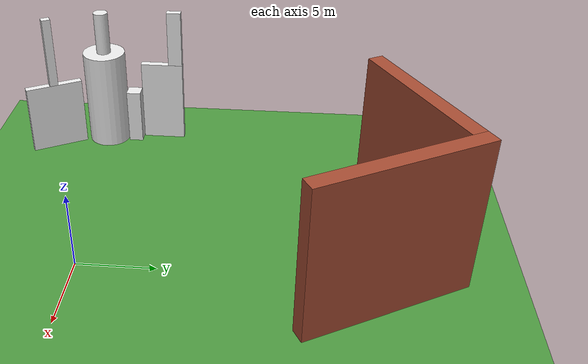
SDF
<sdf version="1.5">
 <world name="default">
  <scene><sky><time>16</time></sky></scene>
  <include><uri>model://sun</uri></include>
  <include><uri>model://ground_plane</uri></include>
  <include><uri>model://grass_plane</uri></include>
  <physics name="default_physics" default="0" type="ode">
   <gravity>0 0 -9.8066</gravity>
   <ode>
    <solver>
     <type>quick</type>
     <iters>10</iters>
     <sor>1.3</sor>
     <use_dynamic_moi_rescaling>0</use_dynamic_moi_rescaling>
    </solver>
    <constraints>
     <cfm>0</cfm>
     <erp>0.2</erp>
     <contact_max_correcting_vel>100</contact_max_correcting_vel>
     <contact_surface_layer>0.001</contact_surface_layer>
    </constraints>
   </ode>
   <max_step_size>0.004</max_step_size>
   <real_time_factor>1</real_time_factor>
   <real_time_update_rate>250</real_time_update_rate>
   <magnetic_field>6.0e-6 2.3e-5 -4.2e-5</magnetic_field>
  </physics>
  <include><name>wall</name><uri>model://wall</uri><pose>-5 20 0  0 0 0.5</pose><static>true</static></include>
  <model name="cylinder_1">
   <pose>-15 -1 3.5 0 0 0</pose>
   <static>true</static>
   <link name="link">
    <collision name="collision">
     <geometry><cylinder><radius>1.5</radius><length>7</length></cylinder></geometry>
    </collision>
    <visual name="visual">
     <geometry><cylinder><radius>1.5</radius><length>7</length></cylinder></geometry>
     <material>
      <script><name>Gazebo/White</name><uri>file://media/materials/scripts/gazebo.material</uri></script>
     </material>
    </visual>
   </link>
  </model>
  <model name="cylinder_2">
   <pose>-15 -1 8.5 0 0 0</pose>
   <static>true</static>
   <link name="link">
    <collision name="collision">
     <geometry><cylinder><radius>0.5</radius><length>3</length></cylinder></geometry>
    </collision>
    <visual name="visual">
     <geometry><cylinder><radius>0.5</radius><length>3</length></cylinder></geometry>
     <material>
      <script><name>Gazebo/White</name><uri>file://media/materials/scripts/gazebo.material</uri></script>
     </material>
    </visual>
   </link>
  </model>
  <model name="box_1">
   <pose>-15 1.05 2 0 0 0</pose>
   <static>true</static>
   <link name="link">
    <collision name="collision"><geometry><box><size>1 1 4</size></box></geometry></collision>
    <visual name="visual">
     <geometry><box><size>1 1 4</size></box></geometry>
     <material>
      <script><name>Gazebo/White</name><uri>file://media/materials/scripts/gazebo.material</uri></script>
     </material>
    </visual>
   </link>
  </model>
  <model name="box_2">
   <pose>-15.5 3.1 3 0 0 0</pose>
   <static>true</static>
   <link name="link">
    <collision name="collision"><geometry><box><size>0.5 3 6</size></box></geometry></collision>
    <visual name="visual">
     <geometry><box><size>0.5 3 6</size></box></geometry>
     <material>
      <script><name>Gazebo/White</name><uri>file://media/materials/scripts/gazebo.material</uri></script>
     </material>
    </visual>
   </link>
  </model>
  <model name="box_2_top">
   <pose>-15.5 4.1 8 0 0 0</pose>
   <static>true</static>
   <link name="link">
    <collision name="collision"><geometry><box><size>0.49 1 4</size></box></geometry></collision>
    <visual name="visual">
     <geometry><box><size>0.49 1 4</size></box></geometry>
     <material>
      <script><name>Gazebo/White</name><uri>file://media/materials/scripts/gazebo.material</uri></script>
     </material>
    </visual>
   </link>
  </model>
  <model name="box_3">
   <pose>-13.5 -4.5 2.5  0 0 0.5</pose>
   <static>true</static>
   <link name="link">
    <collision name="collision"><geometry><box><size>0.5 4 5</size></box></geometry></collision>
    <visual name="visual">
     <geometry><box><size>0.5 4 5</size></box></geometry>
     <material>
      <script><name>Gazebo/White</name><uri>file://media/materials/scripts/gazebo.material</uri></script>
     </material>
    </visual>
   </link>
  </model>
  <model name="box_3_top">
   <pose>-13.5 -4.5 7.5  0 0 0.5</pose>
   <static>true</static>
   <link name="link">
    <collision name="collision"><geometry><box><size>0.49 0.6 5</size></box></geometry></collision>
    <visual name="visual">
     <geometry><box><size>0.49 0.6 5</size></box></geometry>
     <material>
      <script><name>Gazebo/White</name><uri>file://media/materials/scripts/gazebo.material</uri></script>
     </material>
    </visual>
   </link>
  </model>
 </world>
</sdf>

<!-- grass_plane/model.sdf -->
<sdf version="1.5">
  <model name="grass_plane">
    <static>true</static>
    <link name="link">
      <collision name="collision">
        <geometry>
          <box>
            <size>200 200 .1</size>
          </box>
        </geometry>
      </collision>
      <visual name="visual">
        <cast_shadows>false</cast_shadows>
        <geometry>
          <box>
            <size>200 200 .1</size>
          </box>
        </geometry>
        <material>
          <script>
            <uri>file://media/materials/scripts/gazebo.material</uri>
            <name>Gazebo/Grass</name>
          </script>
        </material>
      </visual>
    </link>
  </model>
</sdf>

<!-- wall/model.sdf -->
<sdf version="1.5">
  <model name="wall">
    <static>true</static>
    <link name="wall_0_link">
      <pose>0 0 5 0 0 0</pose>
      <collision name="collision">
        <geometry>
          <box>
            <size>10 1 10</size>
          </box>
        </geometry>
      </collision>
      <visual name="visual">
        <cast_shadows>false</cast_shadows>
        <geometry>
          <box>
            <size>10 1 10</size>
          </box>
        </geometry>
        <material>
          <script>
            <uri>model://wall/materials/scripts</uri>
            <uri>model://wall/materials/textures</uri>
            <name>vrc/bricks</name>
          </script>
        </material>
      </visual>
    </link>
    <link name="wall_1_link">
      <pose>5.5 -5 5 0 0 0</pose>
      <collision name="collision">
        <geometry>
          <box>
            <size>1 11 10</size>
          </box>
        </geometry>
      </collision>
      <visual name="visual">
        <cast_shadows>false</cast_shadows>
        <geometry>
          <box>
            <size>1 11 10</size>
          </box>
        </geometry>
        <material>
          <script>
            <uri>model://wall/materials/scripts</uri>
            <uri>model://wall/materials/textures</uri>
            <name>vrc/bricks</name>
          </script>
        </material>
      </visual>
    </link>
  </model>
</sdf>
